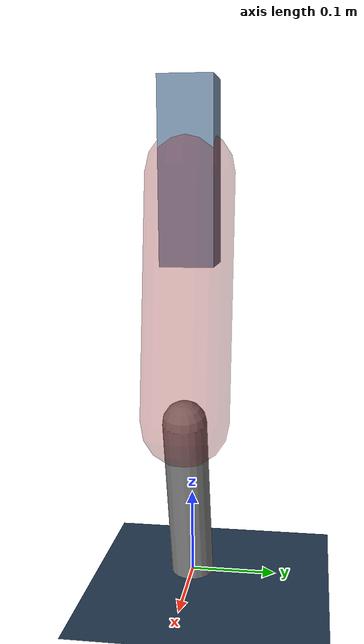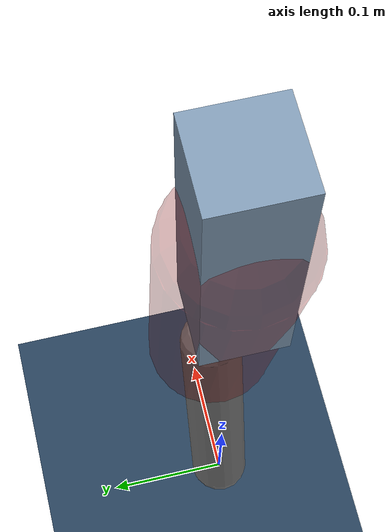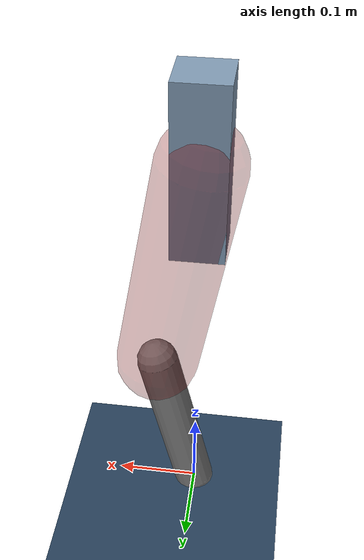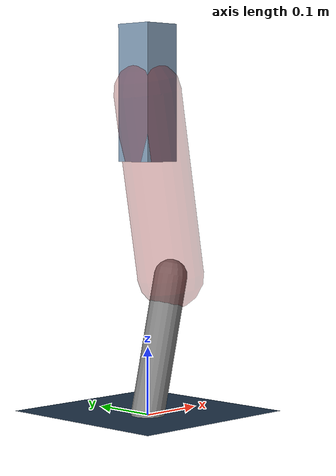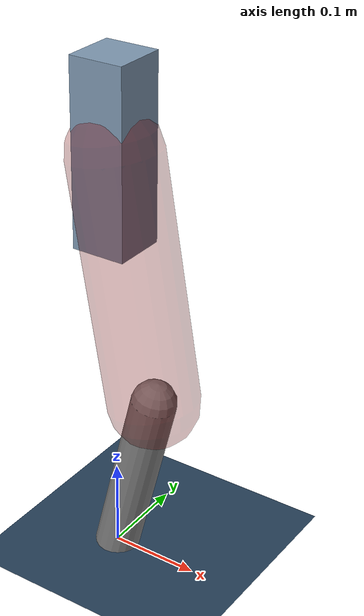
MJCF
<mujoco model="Hopper2D">
	<compiler inertiafromgeom="true" angle="radian" />
	<option timestep="0.001" integrator="implicit" cone="elliptic" solver="Newton" tolerance="1e-10" />

	<default>
		<geom contype="1" conaffinity="1" condim="3" friction="2 0.005 0.0001" solref="0.005 1" />
		<joint limited="true" damping="0.1" />
	</default>

	<asset>
		<texture name="skybox" type="skybox" builtin="gradient" rgb1=".4 .6 .8" rgb2="0 0 0" width="800" height="800" />
		<texture name="grid" type="2d" builtin="checker" rgb1=".1 .2 .3" rgb2=".2 .3 .4" width="300" height="300" mark="edge" markrgb=".2 .3 .4" />
		<material name="ground" texture="grid" texrepeat="1 1" texuniform="true" reflectance="0.1" />
		<material name="leg" rgba="0.5 0.6 0.7 1" />
	</asset>

	<worldbody>

		<geom name="floor" type="plane" size="5 5 0.25" material="ground" />

		<light directional="false" diffuse="0.8 0.8 0.8" specular="0.3 0.3 0.3" pos="0 0 2" dir="0 0 -1" />
		<light mode="targetbodycom" target="base" directional="false" diffuse="0.8 0.8 0.8" specular="0.3 0.3 0.3" pos="0 0 2" dir="0 0 -1" />

		<camera name="fixed" pos="0 -2 1" xyaxes="1 0 0 0 0 1" />
		<camera name="tracking" mode="trackcom" pos="0 -3 1" />

		<body name="root" pos="0 0 0.4725669061727968">
			<joint name="slide_x" type="slide" axis="1 0 0" range="-100 100" />
			<joint name="slide_z" type="slide" axis="0 0 1" range="0 10" />

			<body name="base" pos="0 0 0">
				<geom name="torso" type="box" size="0.03 0.03 0.1" mass="2.212" material="leg" />

				<body name="link1" pos="0 0 0" euler="0 1.393499258596982 0">
					<joint type="hinge" axis="0 -1 0" pos="0 0 0" name="hinge1" limited="true" range="-3.14 3.14" stiffness="0" damping="0.1" />
					<geom name="thigh" type="capsule" fromto="0 0 0 0.2743382784339766 0 0" size="0.05" rgba="0.5 0 0 0.3" mass="0.9201133517717368" />

					<body name="link2" pos="0.2743382784339766 0 0" euler="0 0.4118051279508698 0">
						<joint type="hinge" axis="0 -1 0" pos="0 0 0" name="hinge2" limited="true" range="-3.14 3.14" stiffness="0" damping="0.1" />
						<geom name="shank" type="capsule" fromto="0 0 0 0.20822862773882017 0 0" size="0.025" mass="0.40780576496493814" />

					</body>
				</body>
			</body>
		</body>
	</worldbody>

	<actuator>
		<motor name="torque1" joint="hinge1" ctrlrange="-60.17137531619627 60.17137531619627" ctrllimited="true" gear="1" />
		<motor name="torque2" joint="hinge2" ctrlrange="-92.03466629913612 92.03466629913612" ctrllimited="true" gear="1" />
	</actuator>
</mujoco>
